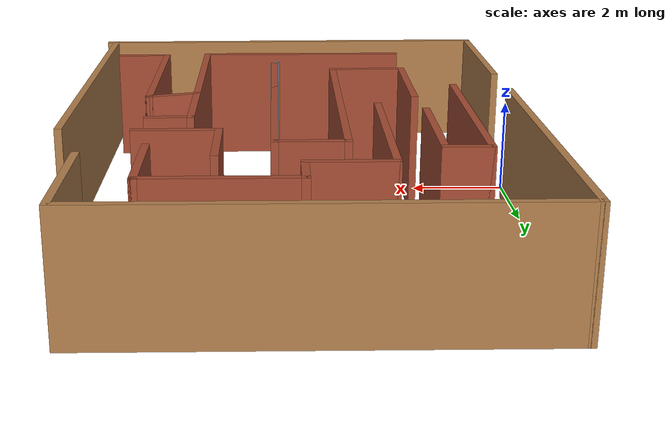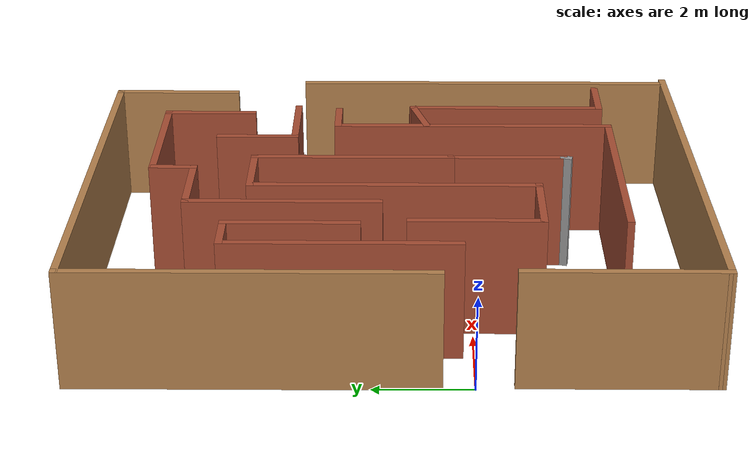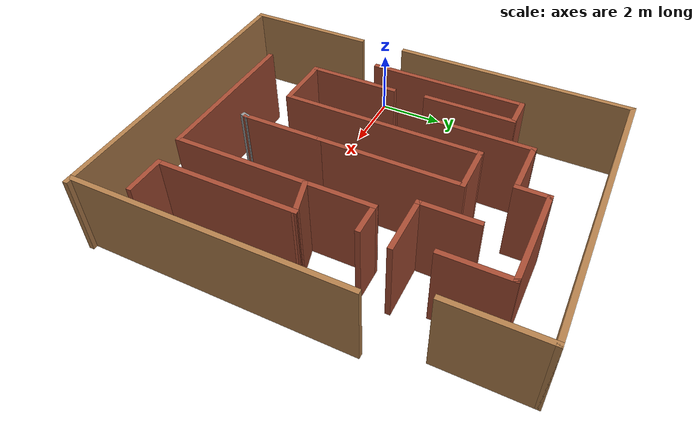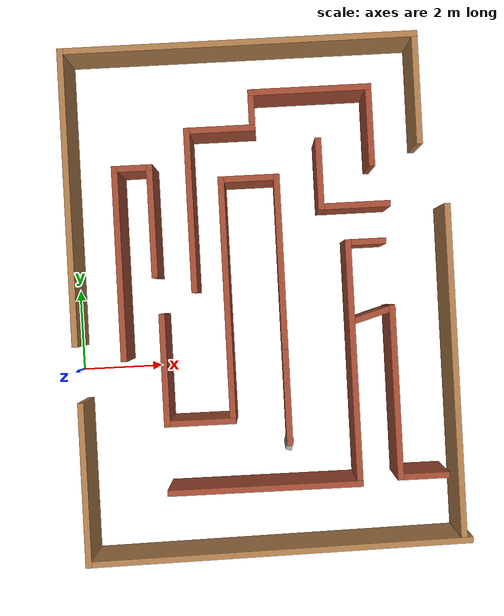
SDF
<?xml version='1.0'?>
<sdf version='1.7'>
  <model name='maze'>
    <pose>4.7318 1.56895 0 0 -0 0</pose>
    <link name='Wall_1'>
      <collision name='Wall_1_Collision'>
        <geometry>
          <box>
            <size>4 0.15 2.5</size>
          </box>
        </geometry>
        <pose>0 0 1.25 0 -0 0</pose>
      </collision>
      <visual name='Wall_1_Visual'>
        <pose>0 0 1.25 0 -0 0</pose>
        <geometry>
          <box>
            <size>4 0.15 2.5</size>
          </box>
        </geometry>
        <material>
          <script>
            <uri>file://media/materials/scripts/gazebo.material</uri>
            <name>Gazebo/Wood</name>
          </script>
          <ambient>1 1 1 1</ambient>
        </material>
        <meta>
          <layer>0</layer>
        </meta>
      </visual>
      <pose>-4.6008 -4.30395 0 0 -0 -1.5708</pose>
    </link>
    <link name='Wall_11'>
      <collision name='Wall_11_Collision'>
        <geometry>
          <box>
            <size>2.75 0.15 2.5</size>
          </box>
        </geometry>
        <pose>0 0 1.25 0 -0 0</pose>
      </collision>
      <visual name='Wall_11_Visual'>
        <pose>0 0 1.25 0 -0 0</pose>
        <geometry>
          <box>
            <size>2.75 0.15 2.5</size>
          </box>
        </geometry>
        <material>
          <script>
            <uri>file://media/materials/scripts/gazebo.material</uri>
            <name>Gazebo/Bricks</name>
          </script>
          <ambient>1 1 1 1</ambient>
        </material>
        <meta>
          <layer>0</layer>
        </meta>
      </visual>
      <pose>-2.5253 -1.61795 0 0 -0 -1.5708</pose>
    </link>
    <link name='Wall_12'>
      <collision name='Wall_12_Collision'>
        <geometry>
          <box>
            <size>1.75 0.15 2.5</size>
          </box>
        </geometry>
        <pose>0 0 1.25 0 -0 0</pose>
      </collision>
      <visual name='Wall_12_Visual'>
        <pose>0 0 1.25 0 -0 0</pose>
        <geometry>
          <box>
            <size>1.75 0.15 2.5</size>
          </box>
        </geometry>
        <material>
          <script>
            <uri>file://media/materials/scripts/gazebo.material</uri>
            <name>Gazebo/Bricks</name>
          </script>
          <ambient>1 1 1 1</ambient>
        </material>
        <meta>
          <layer>0</layer>
        </meta>
      </visual>
      <pose>-1.7253 -2.91795 0 0 -0 0</pose>
    </link>
    <link name='Wall_13'>
      <collision name='Wall_13_Collision'>
        <geometry>
          <box>
            <size>6 0.15 2.5</size>
          </box>
        </geometry>
        <pose>0 0 1.25 0 -0 0</pose>
      </collision>
      <visual name='Wall_13_Visual'>
        <pose>0 0 1.25 0 -0 0</pose>
        <geometry>
          <box>
            <size>6 0.15 2.5</size>
          </box>
        </geometry>
        <material>
          <script>
            <uri>file://media/materials/scripts/gazebo.material</uri>
            <name>Gazebo/Bricks</name>
          </script>
          <ambient>1 1 1 1</ambient>
        </material>
        <meta>
          <layer>0</layer>
        </meta>
      </visual>
      <pose>-0.925305 0.007054 0 0 -0 1.5708</pose>
    </link>
    <link name='Wall_14'>
      <collision name='Wall_14_Collision'>
        <geometry>
          <box>
            <size>1.5 0.15 2.5</size>
          </box>
        </geometry>
        <pose>0 0 1.25 0 -0 0</pose>
      </collision>
      <visual name='Wall_14_Visual'>
        <pose>0 0 1.25 0 -0 0</pose>
        <geometry>
          <box>
            <size>1.5 0.15 2.5</size>
          </box>
        </geometry>
        <material>
          <script>
            <uri>file://media/materials/scripts/gazebo.material</uri>
            <name>Gazebo/Bricks</name>
          </script>
          <ambient>1 1 1 1</ambient>
        </material>
        <meta>
          <layer>0</layer>
        </meta>
      </visual>
      <pose>-0.250304 2.93205 0 0 -0 0</pose>
    </link>
    <link name='Wall_15'>
      <collision name='Wall_15_Collision'>
        <geometry>
          <box>
            <size>4.25 0.15 2.5</size>
          </box>
        </geometry>
        <pose>0 0 1.25 0 -0 0</pose>
      </collision>
      <visual name='Wall_15_Visual'>
        <pose>0 0 1.25 0 -0 0</pose>
        <geometry>
          <box>
            <size>4.25 0.15 2.5</size>
          </box>
        </geometry>
        <material>
          <script>
            <uri>file://media/materials/scripts/gazebo.material</uri>
            <name>Gazebo/Bricks</name>
          </script>
          <ambient>1 1 1 1</ambient>
        </material>
        <meta>
          <layer>0</layer>
        </meta>
      </visual>
      <pose>0.424695 0.882054 0 0 -0 -1.5708</pose>
    </link>
    <link name='Wall_17'>
      <collision name='Wall_17_Collision'>
        <geometry>
          <box>
            <size>4.75 0.15 2.5</size>
          </box>
        </geometry>
        <pose>0 0 1.25 0 -0 0</pose>
      </collision>
      <visual name='Wall_17_Visual'>
        <pose>0 0 1.25 0 -0 0</pose>
        <geometry>
          <box>
            <size>4.75 0.15 2.5</size>
          </box>
        </geometry>
        <material>
          <script>
            <uri>file://media/materials/scripts/gazebo.material</uri>
            <name>Gazebo/Bricks</name>
          </script>
          <ambient>1 1 1 1</ambient>
        </material>
        <meta>
          <layer>0</layer>
        </meta>
      </visual>
      <pose>-3.49131 1.01605 0 0 -0 1.5708</pose>
    </link>
    <link name='Wall_22'>
      <collision name='Wall_22_Collision'>
        <geometry>
          <box>
            <size>4 0.15 2.5</size>
          </box>
        </geometry>
        <pose>0 0 1.25 0 -0 0</pose>
      </collision>
      <visual name='Wall_22_Visual'>
        <pose>0 0 1.25 0 -0 0</pose>
        <geometry>
          <box>
            <size>4 0.15 2.5</size>
          </box>
        </geometry>
        <material>
          <script>
            <uri>file://media/materials/scripts/gazebo.material</uri>
            <name>Gazebo/Bricks</name>
          </script>
          <ambient>1 1 1 1</ambient>
        </material>
        <meta>
          <layer>0</layer>
        </meta>
      </visual>
      <pose>-1.69731 2.22805 0 0 -0 1.5708</pose>
    </link>
    <link name='Wall_23'>
      <collision name='Wall_23_Collision'>
        <geometry>
          <box>
            <size>1.75 0.15 2.5</size>
          </box>
        </geometry>
        <pose>0 0 1.25 0 -0 0</pose>
      </collision>
      <visual name='Wall_23_Visual'>
        <pose>0 0 1.25 0 -0 0</pose>
        <geometry>
          <box>
            <size>1.75 0.15 2.5</size>
          </box>
        </geometry>
        <material>
          <script>
            <uri>file://media/materials/scripts/gazebo.material</uri>
            <name>Gazebo/Bricks</name>
          </script>
          <ambient>1 1 1 1</ambient>
        </material>
        <meta>
          <layer>0</layer>
        </meta>
      </visual>
      <pose>-0.897304 4.15305 0 0 -0 0</pose>
    </link>
    <link name='Wall_24'>
      <collision name='Wall_24_Collision'>
        <geometry>
          <box>
            <size>1 0.15 2.5</size>
          </box>
        </geometry>
        <pose>0 0 1.25 0 -0 0</pose>
      </collision>
      <visual name='Wall_24_Visual'>
        <pose>0 0 1.25 0 -0 0</pose>
        <geometry>
          <box>
            <size>1 0.15 2.5</size>
          </box>
        </geometry>
        <material>
          <script>
            <uri>file://media/materials/scripts/gazebo.material</uri>
            <name>Gazebo/Bricks</name>
          </script>
          <ambient>1 1 1 1</ambient>
        </material>
        <meta>
          <layer>0</layer>
        </meta>
      </visual>
      <pose>-0.097304 4.57805 0 0 -0 1.5708</pose>
    </link>
    <link name='Wall_25'>
      <collision name='Wall_25_Collision'>
        <geometry>
          <box>
            <size>3 0.15 2.5</size>
          </box>
        </geometry>
        <pose>0 0 1.25 0 -0 0</pose>
      </collision>
      <visual name='Wall_25_Visual'>
        <pose>0 0 1.25 0 -0 0</pose>
        <geometry>
          <box>
            <size>3 0.15 2.5</size>
          </box>
        </geometry>
        <material>
          <script>
            <uri>file://media/materials/scripts/gazebo.material</uri>
            <name>Gazebo/Bricks</name>
          </script>
          <ambient>1 1 1 1</ambient>
        </material>
        <meta>
          <layer>0</layer>
        </meta>
      </visual>
      <pose>1.3277 5.00305 0 0 -0 0</pose>
    </link>
    <link name='Wall_26'>
      <collision name='Wall_26_Collision'>
        <geometry>
          <box>
            <size>2 0.15 2.5</size>
          </box>
        </geometry>
        <pose>0 0 1.25 0 -0 0</pose>
      </collision>
      <visual name='Wall_26_Visual'>
        <pose>0 0 1.25 0 -0 0</pose>
        <geometry>
          <box>
            <size>2 0.15 2.5</size>
          </box>
        </geometry>
        <material>
          <script>
            <uri>file://media/materials/scripts/gazebo.material</uri>
            <name>Gazebo/Bricks</name>
          </script>
          <ambient>1 1 1 1</ambient>
        </material>
        <meta>
          <layer>0</layer>
        </meta>
      </visual>
      <pose>2.7527 4.07805 0 0 -0 -1.5708</pose>
    </link>
    <link name='Wall_28'>
      <collision name='Wall_28_Collision'>
        <geometry>
          <box>
            <size>4.75 0.15 2.5</size>
          </box>
        </geometry>
        <pose>0 0 1.25 0 -0 0</pose>
      </collision>
      <visual name='Wall_28_Visual'>
        <pose>0 0 1.25 0 -0 0</pose>
        <geometry>
          <box>
            <size>4.75 0.15 2.5</size>
          </box>
        </geometry>
        <material>
          <script>
            <uri>file://media/materials/scripts/gazebo.material</uri>
            <name>Gazebo/Bricks</name>
          </script>
          <ambient>1 1 1 1</ambient>
        </material>
        <meta>
          <layer>0</layer>
        </meta>
      </visual>
      <pose>-0.225305 -4.59595 0 0 -0 0</pose>
    </link>
    <link name='Wall_29'>
      <collision name='Wall_29_Collision'>
        <geometry>
          <box>
            <size>6 0.15 2.5</size>
          </box>
        </geometry>
        <pose>0 0 1.25 0 -0 0</pose>
      </collision>
      <visual name='Wall_29_Visual'>
        <pose>0 0 1.25 0 -0 0</pose>
        <geometry>
          <box>
            <size>6 0.15 2.5</size>
          </box>
        </geometry>
        <material>
          <script>
            <uri>file://media/materials/scripts/gazebo.material</uri>
            <name>Gazebo/Bricks</name>
          </script>
          <ambient>1 1 1 1</ambient>
        </material>
        <meta>
          <layer>0</layer>
        </meta>
      </visual>
      <pose>2.0747 -1.67095 0 0 -0 1.5708</pose>
    </link>
    <link name='Wall_30'>
      <collision name='Wall_30_Collision'>
        <geometry>
          <box>
            <size>1 0.15 2.5</size>
          </box>
        </geometry>
        <pose>0 0 1.25 0 -0 0</pose>
      </collision>
      <visual name='Wall_30_Visual'>
        <pose>0 0 1.25 0 -0 0</pose>
        <geometry>
          <box>
            <size>1 0.15 2.5</size>
          </box>
        </geometry>
        <material>
          <script>
            <uri>file://media/materials/scripts/gazebo.material</uri>
            <name>Gazebo/Bricks</name>
          </script>
          <ambient>1 1 1 1</ambient>
        </material>
        <meta>
          <layer>0</layer>
        </meta>
      </visual>
      <pose>2.4997 1.25405 0 0 -0 0</pose>
    </link>
    <link name='Wall_32'>
      <collision name='Wall_32_Collision'>
        <geometry>
          <box>
            <size>2.5 0.15 2.5</size>
          </box>
        </geometry>
        <pose>0 0 1.25 0 -0 0</pose>
      </collision>
      <visual name='Wall_32_Visual'>
        <pose>0 0 1.25 0 -0 0</pose>
        <geometry>
          <box>
            <size>2.5 0.15 2.5</size>
          </box>
        </geometry>
        <material>
          <script>
            <uri>file://media/materials/scripts/gazebo.material</uri>
            <name>Gazebo/Bricks</name>
          </script>
          <ambient>1 1 1 1</ambient>
        </material>
        <meta>
          <layer>0</layer>
        </meta>
      </visual>
      <pose>0.424695 -2.34295 0 0 -0 -1.5708</pose>
    </link>
    <link name='Wall_33'>
      <collision name='Wall_33_Collision'>
        <geometry>
          <box>
            <size>0.25 0.15 2.5</size>
          </box>
        </geometry>
        <pose>0 0 1.25 0 -0 0</pose>
      </collision>
      <visual name='Wall_33_Visual'>
        <pose>0 0 1.25 0 -0 0</pose>
        <geometry>
          <box>
            <size>0.25 0.15 2.5</size>
          </box>
        </geometry>
        <material>
          <script>
            <uri>file://media/materials/scripts/gazebo.material</uri>
            <name>Gazebo/Grey</name>
          </script>
          <ambient>1 1 1 1</ambient>
        </material>
        <meta>
          <layer>0</layer>
        </meta>
      </visual>
      <pose>0.411755 -3.56624 0 0 -0 -1.8326</pose>
    </link>
    <link name='Wall_37'>
      <collision name='Wall_37_Collision'>
        <geometry>
          <box>
            <size>1 0.15 2.5</size>
          </box>
        </geometry>
        <pose>0 0 1.25 0 -0 0</pose>
      </collision>
      <visual name='Wall_37_Visual'>
        <pose>0 0 1.25 0 -0 0</pose>
        <geometry>
          <box>
            <size>1 0.15 2.5</size>
          </box>
        </geometry>
        <material>
          <script>
            <uri>file://media/materials/scripts/gazebo.material</uri>
            <name>Gazebo/Bricks</name>
          </script>
          <ambient>1 1 1 1</ambient>
        </material>
        <meta>
          <layer>0</layer>
        </meta>
      </visual>
      <pose>-3.0663 3.31605 0 0 -0 0</pose>
    </link>
    <link name='Wall_38'>
      <collision name='Wall_38_Collision'>
        <geometry>
          <box>
            <size>2.75 0.15 2.5</size>
          </box>
        </geometry>
        <pose>0 0 1.25 0 -0 0</pose>
      </collision>
      <visual name='Wall_38_Visual'>
        <pose>0 0 1.25 0 -0 0</pose>
        <geometry>
          <box>
            <size>2.75 0.15 2.5</size>
          </box>
        </geometry>
        <material>
          <script>
            <uri>file://media/materials/scripts/gazebo.material</uri>
            <name>Gazebo/Bricks</name>
          </script>
          <ambient>1 1 1 1</ambient>
        </material>
        <meta>
          <layer>0</layer>
        </meta>
      </visual>
      <pose>-2.6413 2.01605 0 0 -0 -1.5708</pose>
    </link>
    <link name='Wall_4'>
      <collision name='Wall_4_Collision'>
        <geometry>
          <box>
            <size>9.41503 0.15 2.5</size>
          </box>
        </geometry>
        <pose>0 0 1.25 0 -0 0</pose>
      </collision>
      <visual name='Wall_4_Visual'>
        <pose>0 0 1.25 0 -0 0</pose>
        <geometry>
          <box>
            <size>9.41503 0.15 2.5</size>
          </box>
        </geometry>
        <material>
          <script>
            <uri>file://media/materials/scripts/gazebo.material</uri>
            <name>Gazebo/Wood</name>
          </script>
          <ambient>1 1 1 1</ambient>
        </material>
        <meta>
          <layer>0</layer>
        </meta>
      </visual>
      <pose>0.031196 -6.15995 0 0 -0 0.014895</pose>
    </link>
    <link name='Wall_42'>
      <collision name='Wall_42_Collision'>
        <geometry>
          <box>
            <size>1.75 0.15 2.5</size>
          </box>
        </geometry>
        <pose>0 0 1.25 0 -0 0</pose>
      </collision>
      <visual name='Wall_42_Visual'>
        <pose>0 0 1.25 0 -0 0</pose>
        <geometry>
          <box>
            <size>1.75 0.15 2.5</size>
          </box>
        </geometry>
        <material>
          <script>
            <uri>file://media/materials/scripts/gazebo.material</uri>
            <name>Gazebo/Bricks</name>
          </script>
          <ambient>1 1 1 1</ambient>
        </material>
        <meta>
          <layer>0</layer>
        </meta>
      </visual>
      <pose>1.4767 2.95305 0 0 -0 -1.5708</pose>
    </link>
    <link name='Wall_43'>
      <collision name='Wall_43_Collision'>
        <geometry>
          <box>
            <size>1.75 0.15 2.5</size>
          </box>
        </geometry>
        <pose>0 0 1.25 0 -0 0</pose>
      </collision>
      <visual name='Wall_43_Visual'>
        <pose>0 0 1.25 0 -0 0</pose>
        <geometry>
          <box>
            <size>1.75 0.15 2.5</size>
          </box>
        </geometry>
        <material>
          <script>
            <uri>file://media/materials/scripts/gazebo.material</uri>
            <name>Gazebo/Bricks</name>
          </script>
          <ambient>1 1 1 1</ambient>
        </material>
        <meta>
          <layer>0</layer>
        </meta>
      </visual>
      <pose>2.2767 2.15305 0 0 -0 0</pose>
    </link>
    <link name='Wall_45'>
      <collision name='Wall_45_Collision'>
        <geometry>
          <box>
            <size>4.25 0.15 2.5</size>
          </box>
        </geometry>
        <pose>0 0 1.25 0 -0 0</pose>
      </collision>
      <visual name='Wall_45_Visual'>
        <pose>0 0 1.25 0 -0 0</pose>
        <geometry>
          <box>
            <size>4.25 0.15 2.5</size>
          </box>
        </geometry>
        <material>
          <script>
            <uri>file://media/materials/scripts/gazebo.material</uri>
            <name>Gazebo/Bricks</name>
          </script>
          <ambient>1 1 1 1</ambient>
        </material>
        <meta>
          <layer>0</layer>
        </meta>
      </visual>
      <pose>3.0637 -2.43695 0 0 -0 -1.5708</pose>
    </link>
    <link name='Wall_46'>
      <collision name='Wall_46_Collision'>
        <geometry>
          <box>
            <size>1.25 0.15 2.5</size>
          </box>
        </geometry>
        <pose>0 0 1.25 0 -0 0</pose>
      </collision>
      <visual name='Wall_46_Visual'>
        <pose>0 0 1.25 0 -0 0</pose>
        <geometry>
          <box>
            <size>1.25 0.15 2.5</size>
          </box>
        </geometry>
        <material>
          <script>
            <uri>file://media/materials/scripts/gazebo.material</uri>
            <name>Gazebo/Bricks</name>
          </script>
          <ambient>1 1 1 1</ambient>
        </material>
        <meta>
          <layer>0</layer>
        </meta>
      </visual>
      <pose>3.6137 -4.48695 0 0 -0 0</pose>
    </link>
    <link name='Wall_48'>
      <collision name='Wall_48_Collision'>
        <geometry>
          <box>
            <size>1.15465 0.15 2.5</size>
          </box>
        </geometry>
        <pose>0 0 1.25 0 -0 0</pose>
      </collision>
      <visual name='Wall_48_Visual'>
        <pose>0 0 1.25 0 -0 0</pose>
        <geometry>
          <box>
            <size>1.15465 0.15 2.5</size>
          </box>
        </geometry>
        <material>
          <script>
            <uri>file://media/materials/scripts/gazebo.material</uri>
            <name>Gazebo/Bricks</name>
          </script>
          <ambient>1 1 1 1</ambient>
        </material>
        <meta>
          <layer>0</layer>
        </meta>
      </visual>
      <pose>2.5807 -0.524946 0 0 -0 0.2783</pose>
    </link>
    <link name='Wall_5'>
      <collision name='Wall_5_Collision'>
        <geometry>
          <box>
            <size>8.25 0.15 2.5</size>
          </box>
        </geometry>
        <pose>0 0 1.25 0 -0 0</pose>
      </collision>
      <visual name='Wall_5_Visual'>
        <pose>0 0 1.25 0 -0 0</pose>
        <geometry>
          <box>
            <size>8.25 0.15 2.5</size>
          </box>
        </geometry>
        <material>
          <script>
            <uri>file://media/materials/scripts/gazebo.material</uri>
            <name>Gazebo/Wood</name>
          </script>
          <ambient>1 1 1 1</ambient>
        </material>
        <meta>
          <layer>0</layer>
        </meta>
      </visual>
      <pose>4.5252 -2.04095 0 0 -0 1.5708</pose>
    </link>
    <link name='Wall_7'>
      <collision name='Wall_7_Collision'>
        <geometry>
          <box>
            <size>7.25 0.15 2.5</size>
          </box>
        </geometry>
        <pose>0 0 1.25 0 -0 0</pose>
      </collision>
      <visual name='Wall_7_Visual'>
        <pose>0 0 1.25 0 -0 0</pose>
        <geometry>
          <box>
            <size>7.25 0.15 2.5</size>
          </box>
        </geometry>
        <material>
          <script>
            <uri>file://media/materials/scripts/gazebo.material</uri>
            <name>Gazebo/Wood</name>
          </script>
          <ambient>1 1 1 1</ambient>
        </material>
        <meta>
          <layer>0</layer>
        </meta>
      </visual>
      <pose>-4.6643 2.68005 0 0 -0 1.5708</pose>
    </link>
    <link name='Wall_8'>
      <collision name='Wall_8_Collision'>
        <geometry>
          <box>
            <size>8.75 0.15 2.5</size>
          </box>
        </geometry>
        <pose>0 0 1.25 0 -0 0</pose>
      </collision>
      <visual name='Wall_8_Visual'>
        <pose>0 0 1.25 0 -0 0</pose>
        <geometry>
          <box>
            <size>8.75 0.15 2.5</size>
          </box>
        </geometry>
        <material>
          <script>
            <uri>file://media/materials/scripts/gazebo.material</uri>
            <name>Gazebo/Wood</name>
          </script>
          <ambient>1 1 1 1</ambient>
        </material>
        <meta>
          <layer>0</layer>
        </meta>
      </visual>
      <pose>-0.364305 6.23005 0 0 -0 0</pose>
    </link>
    <link name='Wall_9'>
      <collision name='Wall_9_Collision'>
        <geometry>
          <box>
            <size>2.75 0.15 2.5</size>
          </box>
        </geometry>
        <pose>0 0 1.25 0 -0 0</pose>
      </collision>
      <visual name='Wall_9_Visual'>
        <pose>0 0 1.25 0 -0 0</pose>
        <geometry>
          <box>
            <size>2.75 0.15 2.5</size>
          </box>
        </geometry>
        <material>
          <script>
            <uri>file://media/materials/scripts/gazebo.material</uri>
            <name>Gazebo/Wood</name>
          </script>
          <ambient>1 1 1 1</ambient>
        </material>
        <meta>
          <layer>0</layer>
        </meta>
      </visual>
      <pose>3.93569 4.93005 0 0 -0 -1.5708</pose>
    </link>
    <static>1</static>
  </model>
</sdf>
